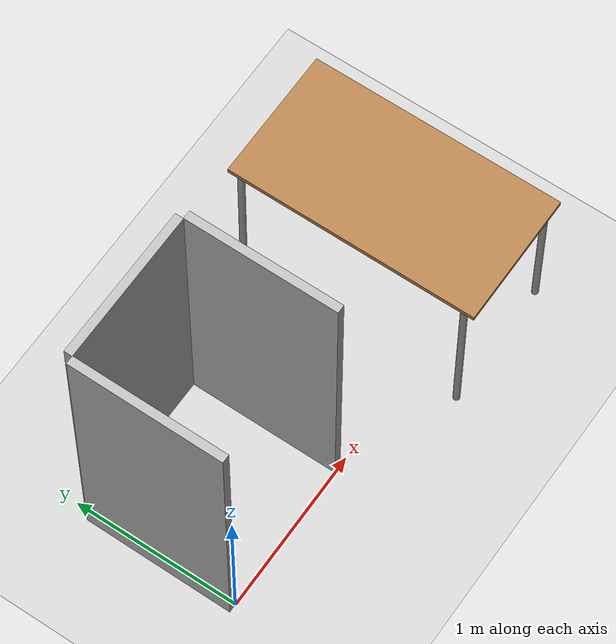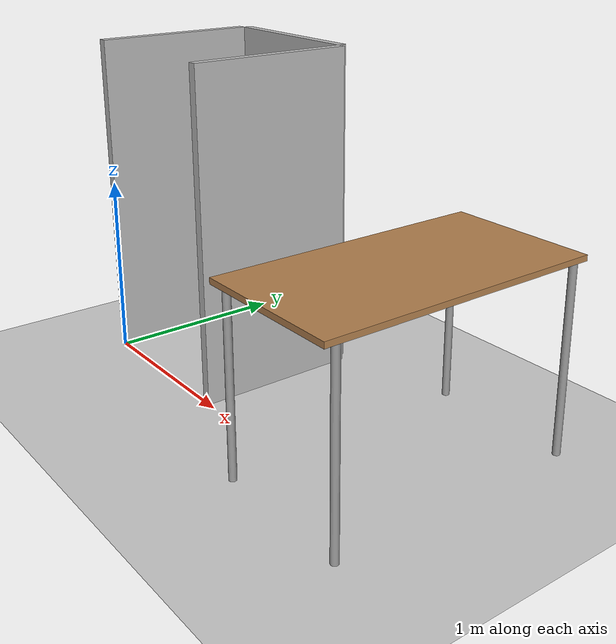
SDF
<sdf version="1.4">
 <world name="default">
  <physics type="ode">
   <gravity>0 0 -9.81</gravity>
   <ode>
    <solver><type>quick</type><iters>50</iters><sor>1.4</sor></solver>
    <constraints>
     <cfm>0.0</cfm>
     <erp>0.2</erp>
     <contact_max_correcting_vel>100.0</contact_max_correcting_vel>
     <contact_surface_layer>0.0</contact_surface_layer>
    </constraints>
   </ode>
   <real_time_update_rate>1000</real_time_update_rate>
   <max_step_size>0.001</max_step_size>
  </physics>
  <include><uri>model://sun</uri></include>
  <include><uri>model://83B1_wall</uri><pose>0.9 0.9 0 0 0 4.71</pose></include>
  <include><uri>model://83B1_wall</uri><pose>0 0.9 0 0 0 6.28</pose></include>
  <include><uri>model://83B1_wall</uri><pose>0 0 0 0 0 7.85</pose></include>
  <include><uri>model://table</uri><static>true</static><pose>2.0 0.4 0 0 0 1.57</pose></include>
  <include><uri>model://ground_plane</uri></include>
 </world>
</sdf>

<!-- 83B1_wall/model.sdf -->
<sdf version="1.4">
  <model name="83B1_wall">
    <static>true</static>
    <link name="link">
      <pose>0.45 0.025 0.9 0 0 0</pose>
      <collision name="collision">
        <geometry>
          <box>
	    <size>0.9 0.05 1.8</size>
          </box>
        </geometry>
        <surface>
          <contact>
            <collide_without_contact>true</collide_without_contact>
            <collide_without_contact_bitmask>2</collide_without_contact_bitmask>
          </contact>
        </surface>

      </collision>
      <visual name="visual">
        <cast_shadows>false</cast_shadows>
        <geometry>
          <box>
	    <size>0.9 0.05 1.8</size>
          </box>
        </geometry>
        <material>
          <script>
            <uri>model://83B1_wall/materials/scripts</uri>
            <uri>model://83B1_wall/materials/textures</uri>
            <name>jsk/83B1_wall</name>
          </script>
        </material>
      </visual>
      <sensor name="mud_contact" type="contact">
        <always_on>true</always_on>
        <update_rate>1000</update_rate>
        <contact>
          <collision>collision</collision>
        </contact>
      </sensor>
    </link>
    <plugin name="gazebo_mud" filename="libMudPlugin.so">
      <contact_sensor_name>link/mud_contact</contact_sensor_name>
      <stiffness>0.0</stiffness>
      <damping>40.0</damping>
      <contact_surface_bitmask>2</contact_surface_bitmask>
      <link_name>drill::link</link_name>
    </plugin>
  </model>
</sdf>

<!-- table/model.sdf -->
<sdf version="1.5">
  <model name="table">
    <static>true</static>
    <link name="link">
      <collision name="surface">
        <pose>0 0 1.0 0 0 0</pose>
        <geometry>
          <box>
            <size>1.5 0.8 0.03</size>
          </box>
        </geometry>
        <surface>
          <friction>
            <ode>
              <mu>0.6</mu>
              <mu2>0.6</mu2>
            </ode>
          </friction>
        </surface>
      </collision>
      <visual name="visual1">
        <pose>0 0 1.0 0 0 0</pose>
        <geometry>
          <box>
            <size>1.5 0.8 0.03</size>
          </box>
        </geometry>
        <material>
          <script>
            <uri>model://media/materials/scripts/gazebo.material</uri>
            <name>Gazebo/Wood</name>
          </script>
        </material>
      </visual>
      <collision name="front_left_leg">
        <pose>0.68 0.38 0.5 0 0 0</pose>
        <geometry>
          <cylinder>
            <radius>0.02</radius>
            <length>1.0</length>
          </cylinder>
        </geometry>
      </collision>
      <visual name="front_left_leg">
        <pose>0.68 0.38 0.5 0 0 0</pose>
        <geometry>
          <cylinder>
            <radius>0.02</radius>
            <length>1.0</length>
          </cylinder>
        </geometry>
        <material>
          <script>
            <uri>model://media/materials/scripts/gazebo.material</uri>
            <name>Gazebo/Grey</name>
          </script>
        </material>
      </visual>
      <collision name="front_right_leg">
        <pose>0.68 -0.38 0.5 0 0 0</pose>
        <geometry>
          <cylinder>
            <radius>0.02</radius>
            <length>1.0</length>
          </cylinder>
        </geometry>
      </collision>
      <visual name="front_right_leg">
        <pose>0.68 -0.38 0.5 0 0 0</pose>
        <geometry>
          <cylinder>
            <radius>0.02</radius>
            <length>1.0</length>
          </cylinder>
        </geometry>
        <material>
          <script>
            <uri>model://media/materials/scripts/gazebo.material</uri>
            <name>Gazebo/Grey</name>
          </script>
        </material>
      </visual>
      <collision name="back_right_leg">
        <pose>-0.68 -0.38 0.5 0 0 0</pose>
        <geometry>
          <cylinder>
            <radius>0.02</radius>
            <length>1.0</length>
          </cylinder>
        </geometry>
      </collision>
      <visual name="back_right_leg">
        <pose>-0.68 -0.38 0.5 0 0 0</pose>
        <geometry>
          <cylinder>
            <radius>0.02</radius>
            <length>1.0</length>
          </cylinder>
        </geometry>
        <material>
          <script>
            <uri>model://media/materials/scripts/gazebo.material</uri>
            <name>Gazebo/Grey</name>
          </script>
        </material>
      </visual>
      <collision name="back_left_leg">
        <pose>-0.68 0.38 0.5 0 0 0</pose>
        <geometry>
          <cylinder>
            <radius>0.02</radius>
            <length>1.0</length>
          </cylinder>
        </geometry>
      </collision>
      <visual name="back_left_leg">
        <pose>-0.68 0.38 0.5 0 0 0</pose>
        <geometry>
          <cylinder>
            <radius>0.02</radius>
            <length>1.0</length>
          </cylinder>
        </geometry>
        <material>
          <script>
            <uri>model://media/materials/scripts/gazebo.material</uri>
            <name>Gazebo/Grey</name>
          </script>
        </material>
      </visual>
    </link>
  </model>
</sdf>
